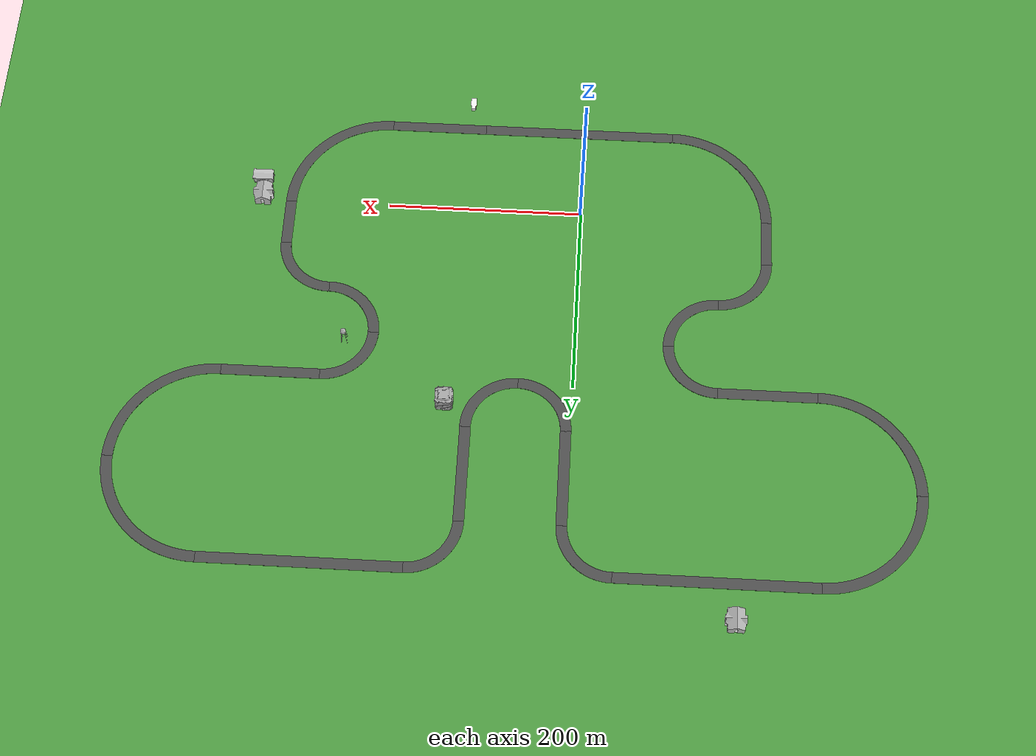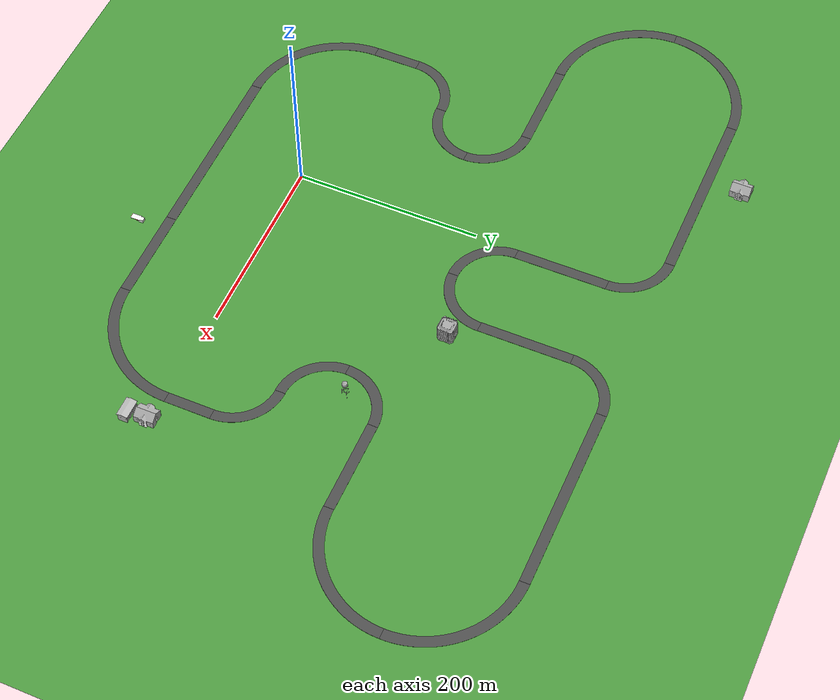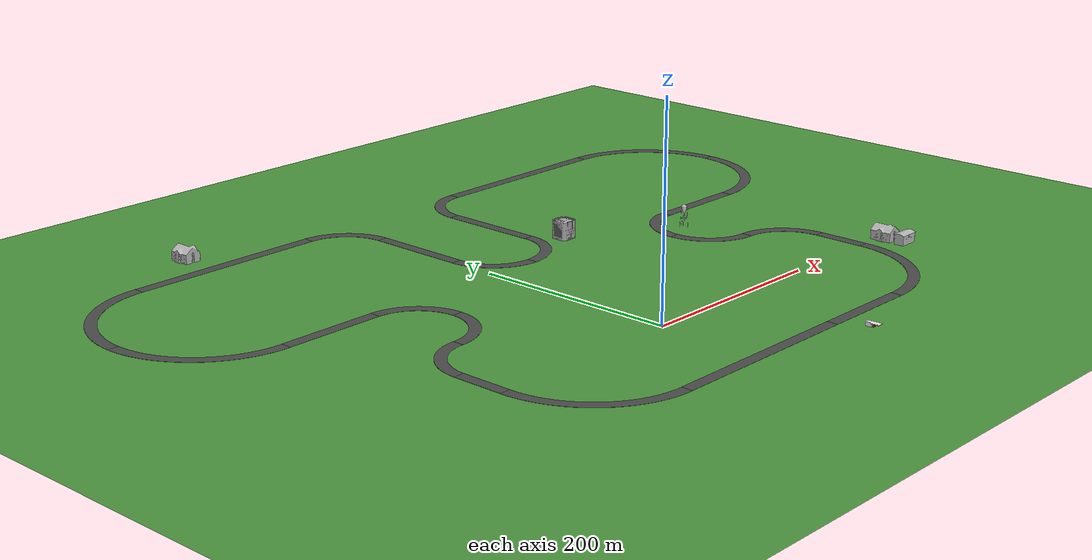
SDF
<sdf version="1.6">
 <world name="default">
  <light name="sun" type="directional">
   <pose>0 0 10 0 -0 0</pose>
   <diffuse>0.8 0.8 0.8 1</diffuse>
   <specular>0.2 0.2 0.2 1</specular>
   <attenuation>
    <range>1000</range>
    <constant>0.9</constant>
    <linear>0.01</linear>
    <quadratic>0.001</quadratic>
   </attenuation>
   <direction>-0.5 0.1 -0.9</direction>
  </light>
  <scene>
   <ambient>0.4 0.4 0.4 1</ambient>
   <background>0 0.9 1 1</background>
   <shadows>1</shadows>
   <grid>0</grid>
  </scene>
  <model name="ground_plane">
   <static>1</static>
   <link name="link">
    <collision name="collision">
     <geometry><plane><normal>0 0 1</normal><size>100 100</size></plane></geometry>
     <surface><friction><ode><mu>100</mu><mu2>50</mu2></ode></friction></surface>
    </collision>
    <visual name="visual">
     <cast_shadows>0</cast_shadows>
     <geometry><plane><normal>0 0 1</normal><size>10000 10000</size></plane></geometry>
     <material>
      <script><uri>file://media/materials/scripts/ds_sim.material</uri><name>DSSim/GrassBackground</name></script>
     </material>
    </visual>
   </link>
  </model>
  <gravity>0 0 -9.8</gravity>
  <magnetic_field>6e-06 2.3e-05 -4.2e-05</magnetic_field>
  <atmosphere type="adiabatic"/>
  <physics name="default_physics" default="0" type="ode">
   <max_step_size>0.001</max_step_size>
   <real_time_factor>1</real_time_factor>
   <real_time_update_rate>1000</real_time_update_rate>
  </physics>
  <scene>
   <ambient>0.4 0.4 0.4 1</ambient>
   <background>0.7 0.7 0.7 1</background>
   <shadows>1</shadows>
   <grid>0</grid>
  </scene>
  <spherical_coordinates>
   <surface_model>EARTH_WGS84</surface_model>
   <latitude_deg>0</latitude_deg>
   <longitude_deg>0</longitude_deg>
   <elevation>0</elevation>
   <heading_deg>0</heading_deg>
  </spherical_coordinates>
  <model name="(DS) Straight Road - 200m_8">
   <static>1</static>
   <link name="link">
    <inertial>
     <mass>1</mass>
     <inertia><ixx>1</ixx><iyy>1</iyy><izz>1</izz><ixy>0</ixy><ixz>0</ixz><iyz>0</iyz></inertia>
    </inertial>
    <collision name="collision">
     <geometry><mesh><uri>model://ds_straight_road_200m/meshes/straight_road_200m.dae</uri></mesh></geometry>
    </collision>
    <visual name="visual">
     <geometry><mesh><uri>model://ds_straight_road_200m/meshes/straight_road_200m.dae</uri></mesh></geometry>
     <material>
      <script><uri>file://media/materials/scripts/ds_sim.material</uri><name>DSSim/Road</name></script>
     </material>
    </visual>
   </link>
   <pose>4.98041 -90.7828 0 0 -0 0</pose>
  </model>
  <model name="(DS) Straight Road - 100m_0">
   <static>1</static>
   <link name="link">
    <inertial>
     <mass>1</mass>
     <inertia><ixx>1</ixx><iyy>1</iyy><izz>1</izz><ixy>0</ixy><ixz>0</ixz><iyz>0</iyz></inertia>
    </inertial>
    <collision name="collision">
     <geometry><mesh><uri>model://ds_straight_road_100m/meshes/straight_road_100m.dae</uri></mesh></geometry>
    </collision>
    <visual name="visual">
     <geometry><mesh><uri>model://ds_straight_road_100m/meshes/straight_road_100m.dae</uri></mesh></geometry>
     <material>
      <script><uri>file://media/materials/scripts/ds_sim.material</uri><name>DSSim/Road</name></script>
     </material>
    </visual>
   </link>
   <pose>154.969 -90.7906 0 0 -0 0</pose>
  </model>
  <model name="(DS) Curved Road - 100m_3">
   <static>1</static>
   <link name="link">
    <inertial>
     <mass>1</mass>
     <inertia><ixx>1</ixx><iyy>1</iyy><izz>1</izz><ixy>0</ixy><ixz>0</ixz><iyz>0</iyz></inertia>
    </inertial>
    <collision name="collision">
     <geometry><mesh><uri>model://ds_curved_road_100m/meshes/curved_road_100m.dae</uri></mesh></geometry>
    </collision>
    <visual name="visual">
     <geometry><mesh><uri>model://ds_curved_road_100m/meshes/curved_road_100m.dae</uri></mesh></geometry>
     <material>
      <script><uri>file://media/materials/scripts/ds_sim.material</uri><name>DSSim/Road</name></script>
     </material>
    </visual>
   </link>
   <pose>257.705 -53.7644 0 0 -0 0</pose>
  </model>
  <model name="(DS) Straight Road - 50m">
   <static>1</static>
   <link name="link">
    <inertial>
     <mass>1</mass>
     <inertia><ixx>1</ixx><iyy>1</iyy><izz>1</izz><ixy>0</ixy><ixz>0</ixz><iyz>0</iyz></inertia>
    </inertial>
    <collision name="collision">
     <geometry><mesh><uri>model://ds_straight_road_50m/meshes/straight_road_50m.dae</uri></mesh></geometry>
    </collision>
    <visual name="visual">
     <geometry><mesh><uri>model://ds_straight_road_50m/meshes/straight_road_50m.dae</uri></mesh></geometry>
     <material>
      <script><uri>file://media/materials/scripts/ds_sim.material</uri><name>DSSim/Road</name></script>
     </material>
    </visual>
   </link>
   <pose>314.936 23.9712 0 0 0 -1.5707</pose>
  </model>
  <model name="(DS) Curved Road - 100m_7">
   <static>1</static>
   <link name="link">
    <inertial>
     <mass>1</mass>
     <inertia><ixx>1</ixx><iyy>1</iyy><izz>1</izz><ixy>0</ixy><ixz>0</ixz><iyz>0</iyz></inertia>
    </inertial>
    <collision name="collision">
     <geometry><mesh><uri>model://ds_curved_road_100m/meshes/curved_road_100m.dae</uri></mesh></geometry>
    </collision>
    <visual name="visual">
     <geometry><mesh><uri>model://ds_curved_road_100m/meshes/curved_road_100m.dae</uri></mesh></geometry>
     <material>
      <script><uri>file://media/materials/scripts/ds_sim.material</uri><name>DSSim/Road</name></script>
     </material>
    </visual>
   </link>
   <pose>-147.731 -53.7561 0 0 0 -1.5707</pose>
  </model>
  <model name="(DS) Straight Road - 50m_2">
   <static>1</static>
   <link name="link">
    <inertial>
     <mass>1</mass>
     <inertia><ixx>1</ixx><iyy>1</iyy><izz>1</izz><ixy>0</ixy><ixz>0</ixz><iyz>0</iyz></inertia>
    </inertial>
    <collision name="collision">
     <geometry><mesh><uri>model://ds_straight_road_50m/meshes/straight_road_50m.dae</uri></mesh></geometry>
    </collision>
    <visual name="visual">
     <geometry><mesh><uri>model://ds_straight_road_50m/meshes/straight_road_50m.dae</uri></mesh></geometry>
     <material>
      <script><uri>file://media/materials/scripts/ds_sim.material</uri><name>DSSim/Road</name></script>
     </material>
    </visual>
   </link>
   <pose>-204.97 23.9511 0 0 -0 1.5707</pose>
  </model>
  <model name="(DS) Curved Road - 50m_1">
   <static>1</static>
   <link name="link">
    <inertial>
     <mass>1</mass>
     <inertia><ixx>1</ixx><iyy>1</iyy><izz>1</izz><ixy>0</ixy><ixz>0</ixz><iyz>0</iyz></inertia>
    </inertial>
    <collision name="collision">
     <geometry><mesh><uri>model://ds_curved_road_50m/meshes/curved_road_50m.dae</uri></mesh></geometry>
    </collision>
    <visual name="visual">
     <geometry><mesh><uri>model://ds_curved_road_50m/meshes/curved_road_50m.dae</uri></mesh></geometry>
     <material>
      <script><uri>file://media/materials/scripts/ds_sim.material</uri><name>DSSim/Road</name></script>
     </material>
    </visual>
   </link>
   <pose>-172.719 76.5402 0 0 -0 3.14159</pose>
  </model>
  <model name="(DS) Curved Road - 50m_2">
   <static>1</static>
   <link name="link">
    <inertial>
     <mass>1</mass>
     <inertia><ixx>1</ixx><iyy>1</iyy><izz>1</izz><ixy>0</ixy><ixz>0</ixz><iyz>0</iyz></inertia>
    </inertial>
    <collision name="collision">
     <geometry><mesh><uri>model://ds_curved_road_50m/meshes/curved_road_50m.dae</uri></mesh></geometry>
    </collision>
    <visual name="visual">
     <geometry><mesh><uri>model://ds_curved_road_50m/meshes/curved_road_50m.dae</uri></mesh></geometry>
     <material>
      <script><uri>file://media/materials/scripts/ds_sim.material</uri><name>DSSim/Road</name></script>
     </material>
    </visual>
   </link>
   <pose>-117.245 120.825 0 0 -0 0</pose>
  </model>
  <model name="(DS) Curved Road - 50m_3">
   <static>1</static>
   <link name="link">
    <inertial>
     <mass>1</mass>
     <inertia><ixx>1</ixx><iyy>1</iyy><izz>1</izz><ixy>0</ixy><ixz>0</ixz><iyz>0</iyz></inertia>
    </inertial>
    <collision name="collision">
     <geometry><mesh><uri>model://ds_curved_road_50m/meshes/curved_road_50m.dae</uri></mesh></geometry>
    </collision>
    <visual name="visual">
     <geometry><mesh><uri>model://ds_curved_road_50m/meshes/curved_road_50m.dae</uri></mesh></geometry>
     <material>
      <script><uri>file://media/materials/scripts/ds_sim.material</uri><name>DSSim/Road</name></script>
     </material>
    </visual>
   </link>
   <pose>-117.244 176.289 0 0 -0 1.5707</pose>
  </model>
  <model name="(DS) Straight Road - 100m_5">
   <static>1</static>
   <link name="link">
    <inertial>
     <mass>1</mass>
     <inertia><ixx>1</ixx><iyy>1</iyy><izz>1</izz><ixy>0</ixy><ixz>0</ixz><iyz>0</iyz></inertia>
    </inertial>
    <collision name="collision">
     <geometry><mesh><uri>model://ds_straight_road_100m/meshes/straight_road_100m.dae</uri></mesh></geometry>
    </collision>
    <visual name="visual">
     <geometry><mesh><uri>model://ds_straight_road_100m/meshes/straight_road_100m.dae</uri></mesh></geometry>
     <material>
      <script><uri>file://media/materials/scripts/ds_sim.material</uri><name>DSSim/Road</name></script>
     </material>
    </visual>
   </link>
   <pose>-194.968 208.536 0 0 -0 0</pose>
  </model>
  <model name="(DS) Curved Road - 50m_7">
   <static>1</static>
   <link name="link">
    <inertial>
     <mass>1</mass>
     <inertia><ixx>1</ixx><iyy>1</iyy><izz>1</izz><ixy>0</ixy><ixz>0</ixz><iyz>0</iyz></inertia>
    </inertial>
    <collision name="collision">
     <geometry><mesh><uri>model://ds_curved_road_50m/meshes/curved_road_50m.dae</uri></mesh></geometry>
    </collision>
    <visual name="visual">
     <geometry><mesh><uri>model://ds_curved_road_50m/meshes/curved_road_50m.dae</uri></mesh></geometry>
     <material>
      <script><uri>file://media/materials/scripts/ds_sim.material</uri><name>DSSim/Road</name></script>
     </material>
    </visual>
   </link>
   <pose>282.694 76.6819 0 0 -0 1.5707</pose>
  </model>
  <model name="(DS) Curved Road - 50m_8">
   <static>1</static>
   <link name="link">
    <inertial>
     <mass>1</mass>
     <inertia><ixx>1</ixx><iyy>1</iyy><izz>1</izz><ixy>0</ixy><ixz>0</ixz><iyz>0</iyz></inertia>
    </inertial>
    <collision name="collision">
     <geometry><mesh><uri>model://ds_curved_road_50m/meshes/curved_road_50m.dae</uri></mesh></geometry>
    </collision>
    <visual name="visual">
     <geometry><mesh><uri>model://ds_curved_road_50m/meshes/curved_road_50m.dae</uri></mesh></geometry>
     <material>
      <script><uri>file://media/materials/scripts/ds_sim.material</uri><name>DSSim/Road</name></script>
     </material>
    </visual>
   </link>
   <pose>227.233 176.317 0 0 -0 3.14159</pose>
  </model>
  <model name="(DS) Curved Road - 50m_9">
   <static>1</static>
   <link name="link">
    <inertial>
     <mass>1</mass>
     <inertia><ixx>1</ixx><iyy>1</iyy><izz>1</izz><ixy>0</ixy><ixz>0</ixz><iyz>0</iyz></inertia>
    </inertial>
    <collision name="collision">
     <geometry><mesh><uri>model://ds_curved_road_50m/meshes/curved_road_50m.dae</uri></mesh></geometry>
    </collision>
    <visual name="visual">
     <geometry><mesh><uri>model://ds_curved_road_50m/meshes/curved_road_50m.dae</uri></mesh></geometry>
     <material>
      <script><uri>file://media/materials/scripts/ds_sim.material</uri><name>DSSim/Road</name></script>
     </material>
    </visual>
   </link>
   <pose>227.236 120.969 0 0 0 -1.5707</pose>
  </model>
  <model name="(DS) Straight Road - 100m_6">
   <static>1</static>
   <link name="link">
    <inertial>
     <mass>1</mass>
     <inertia><ixx>1</ixx><iyy>1</iyy><izz>1</izz><ixy>0</ixy><ixz>0</ixz><iyz>0</iyz></inertia>
    </inertial>
    <collision name="collision">
     <geometry><mesh><uri>model://ds_straight_road_100m/meshes/straight_road_100m.dae</uri></mesh></geometry>
    </collision>
    <visual name="visual">
     <geometry><mesh><uri>model://ds_straight_road_100m/meshes/straight_road_100m.dae</uri></mesh></geometry>
     <material>
      <script><uri>file://media/materials/scripts/ds_sim.material</uri><name>DSSim/Road</name></script>
     </material>
    </visual>
   </link>
   <pose>304.773 208.555 0 0 -0 0</pose>
  </model>
  <model name="(DS) Curved Road - 100m_8">
   <static>1</static>
   <link name="link">
    <inertial>
     <mass>1</mass>
     <inertia><ixx>1</ixx><iyy>1</iyy><izz>1</izz><ixy>0</ixy><ixz>0</ixz><iyz>0</iyz></inertia>
    </inertial>
    <collision name="collision">
     <geometry><mesh><uri>model://ds_curved_road_100m/meshes/curved_road_100m.dae</uri></mesh></geometry>
    </collision>
    <visual name="visual">
     <geometry><mesh><uri>model://ds_curved_road_100m/meshes/curved_road_100m.dae</uri></mesh></geometry>
     <material>
      <script><uri>file://media/materials/scripts/ds_sim.material</uri><name>DSSim/Road</name></script>
     </material>
    </visual>
   </link>
   <pose>407.453 245.59 0 0 -0 0</pose>
  </model>
  <model name="(DS) Curved Road - 100m_9">
   <static>1</static>
   <link name="link">
    <inertial>
     <mass>1</mass>
     <inertia><ixx>1</ixx><iyy>1</iyy><izz>1</izz><ixy>0</ixy><ixz>0</ixz><iyz>0</iyz></inertia>
    </inertial>
    <collision name="collision">
     <geometry><mesh><uri>model://ds_curved_road_100m/meshes/curved_road_100m.dae</uri></mesh></geometry>
    </collision>
    <visual name="visual">
     <geometry><mesh><uri>model://ds_curved_road_100m/meshes/curved_road_100m.dae</uri></mesh></geometry>
     <material>
      <script><uri>file://media/materials/scripts/ds_sim.material</uri><name>DSSim/Road</name></script>
     </material>
    </visual>
   </link>
   <pose>-297.696 245.57 0 0 0 -1.5707</pose>
  </model>
  <model name="(DS) Curved Road - 100m_10">
   <static>1</static>
   <link name="link">
    <inertial>
     <mass>1</mass>
     <inertia><ixx>1</ixx><iyy>1</iyy><izz>1</izz><ixy>0</ixy><ixz>0</ixz><iyz>0</iyz></inertia>
    </inertial>
    <collision name="collision">
     <geometry><mesh><uri>model://ds_curved_road_100m/meshes/curved_road_100m.dae</uri></mesh></geometry>
    </collision>
    <visual name="visual">
     <geometry><mesh><uri>model://ds_curved_road_100m/meshes/curved_road_100m.dae</uri></mesh></geometry>
     <material>
      <script><uri>file://media/materials/scripts/ds_sim.material</uri><name>DSSim/Road</name></script>
     </material>
    </visual>
   </link>
   <pose>-297.693 350.522 0 0 -0 3.14159</pose>
  </model>
  <model name="(DS) Curved Road - 100m_11">
   <static>1</static>
   <link name="link">
    <inertial>
     <mass>1</mass>
     <inertia><ixx>1</ixx><iyy>1</iyy><izz>1</izz><ixy>0</ixy><ixz>0</ixz><iyz>0</iyz></inertia>
    </inertial>
    <collision name="collision">
     <geometry><mesh><uri>model://ds_curved_road_100m/meshes/curved_road_100m.dae</uri></mesh></geometry>
    </collision>
    <visual name="visual">
     <geometry><mesh><uri>model://ds_curved_road_100m/meshes/curved_road_100m.dae</uri></mesh></geometry>
     <material>
      <script><uri>file://media/materials/scripts/ds_sim.material</uri><name>DSSim/Road</name></script>
     </material>
    </visual>
   </link>
   <pose>407.459 351.038 0 0 -0 1.5707</pose>
  </model>
  <model name="(DS) Straight Road - 200m_9">
   <static>1</static>
   <link name="link">
    <inertial>
     <mass>1</mass>
     <inertia><ixx>1</ixx><iyy>1</iyy><izz>1</izz><ixy>0</ixy><ixz>0</ixz><iyz>0</iyz></inertia>
    </inertial>
    <collision name="collision">
     <geometry><mesh><uri>model://ds_straight_road_200m/meshes/straight_road_200m.dae</uri></mesh></geometry>
    </collision>
    <visual name="visual">
     <geometry><mesh><uri>model://ds_straight_road_200m/meshes/straight_road_200m.dae</uri></mesh></geometry>
     <material>
      <script><uri>file://media/materials/scripts/ds_sim.material</uri><name>DSSim/Road</name></script>
     </material>
    </visual>
   </link>
   <pose>-144.993 407.764 0 0 -0 0</pose>
  </model>
  <model name="(DS) Straight Road - 200m_11">
   <static>1</static>
   <link name="link">
    <inertial>
     <mass>1</mass>
     <inertia><ixx>1</ixx><iyy>1</iyy><izz>1</izz><ixy>0</ixy><ixz>0</ixz><iyz>0</iyz></inertia>
    </inertial>
    <collision name="collision">
     <geometry><mesh><uri>model://ds_straight_road_200m/meshes/straight_road_200m.dae</uri></mesh></geometry>
    </collision>
    <visual name="visual">
     <geometry><mesh><uri>model://ds_straight_road_200m/meshes/straight_road_200m.dae</uri></mesh></geometry>
     <material>
      <script><uri>file://media/materials/scripts/ds_sim.material</uri><name>DSSim/Road</name></script>
     </material>
    </visual>
   </link>
   <pose>254.821 408.288 0 0 -0 0</pose>
  </model>
  <model name="(DS) Curved Road - 50m_10">
   <static>1</static>
   <link name="link">
    <inertial>
     <mass>1</mass>
     <inertia><ixx>1</ixx><iyy>1</iyy><izz>1</izz><ixy>0</ixy><ixz>0</ixz><iyz>0</iyz></inertia>
    </inertial>
    <collision name="collision">
     <geometry><mesh><uri>model://ds_curved_road_50m/meshes/curved_road_50m.dae</uri></mesh></geometry>
    </collision>
    <visual name="visual">
     <geometry><mesh><uri>model://ds_curved_road_50m/meshes/curved_road_50m.dae</uri></mesh></geometry>
     <material>
      <script><uri>file://media/materials/scripts/ds_sim.material</uri><name>DSSim/Road</name></script>
     </material>
    </visual>
   </link>
   <pose>82.8035 220.58 0 0 -0 0</pose>
  </model>
  <model name="(DS) Curved Road - 50m_11">
   <static>1</static>
   <link name="link">
    <inertial>
     <mass>1</mass>
     <inertia><ixx>1</ixx><iyy>1</iyy><izz>1</izz><ixy>0</ixy><ixz>0</ixz><iyz>0</iyz></inertia>
    </inertial>
    <collision name="collision">
     <geometry><mesh><uri>model://ds_curved_road_50m/meshes/curved_road_50m.dae</uri></mesh></geometry>
    </collision>
    <visual name="visual">
     <geometry><mesh><uri>model://ds_curved_road_50m/meshes/curved_road_50m.dae</uri></mesh></geometry>
     <material>
      <script><uri>file://media/materials/scripts/ds_sim.material</uri><name>DSSim/Road</name></script>
     </material>
    </visual>
   </link>
   <pose>127.086 376.051 0 0 -0 3.14159</pose>
  </model>
  <model name="(DS) Curved Road - 50m_12">
   <static>1</static>
   <link name="link">
    <inertial>
     <mass>1</mass>
     <inertia><ixx>1</ixx><iyy>1</iyy><izz>1</izz><ixy>0</ixy><ixz>0</ixz><iyz>0</iyz></inertia>
    </inertial>
    <collision name="collision">
     <geometry><mesh><uri>model://ds_curved_road_50m/meshes/curved_road_50m.dae</uri></mesh></geometry>
    </collision>
    <visual name="visual">
     <geometry><mesh><uri>model://ds_curved_road_50m/meshes/curved_road_50m.dae</uri></mesh></geometry>
     <material>
      <script><uri>file://media/materials/scripts/ds_sim.material</uri><name>DSSim/Road</name></script>
     </material>
    </visual>
   </link>
   <pose>27.3315 220.574 0 0 0 -1.5707</pose>
  </model>
  <model name="(DS) Curved Road - 50m_13">
   <static>1</static>
   <link name="link">
    <inertial>
     <mass>1</mass>
     <inertia><ixx>1</ixx><iyy>1</iyy><izz>1</izz><ixy>0</ixy><ixz>0</ixz><iyz>0</iyz></inertia>
    </inertial>
    <collision name="collision">
     <geometry><mesh><uri>model://ds_curved_road_50m/meshes/curved_road_50m.dae</uri></mesh></geometry>
    </collision>
    <visual name="visual">
     <geometry><mesh><uri>model://ds_curved_road_50m/meshes/curved_road_50m.dae</uri></mesh></geometry>
     <material>
      <script><uri>file://media/materials/scripts/ds_sim.material</uri><name>DSSim/Road</name></script>
     </material>
    </visual>
   </link>
   <pose>-17.2474 375.532 0 0 -0 1.5707</pose>
  </model>
  <model name="(DS) Straight Road - 100m_7">
   <static>1</static>
   <link name="link">
    <inertial>
     <mass>1</mass>
     <inertia><ixx>1</ixx><iyy>1</iyy><izz>1</izz><ixy>0</ixy><ixz>0</ixz><iyz>0</iyz></inertia>
    </inertial>
    <collision name="collision">
     <geometry><mesh><uri>model://ds_straight_road_100m/meshes/straight_road_100m.dae</uri></mesh></geometry>
    </collision>
    <visual name="visual">
     <geometry><mesh><uri>model://ds_straight_road_100m/meshes/straight_road_100m.dae</uri></mesh></geometry>
     <material>
      <script><uri>file://media/materials/scripts/ds_sim.material</uri><name>DSSim/Road</name></script>
     </material>
    </visual>
   </link>
   <pose>15.0897 297.99 0 0 0 -1.5707</pose>
  </model>
  <model name="(DS) Straight Road - 100m_8">
   <static>1</static>
   <link name="link">
    <inertial>
     <mass>1</mass>
     <inertia><ixx>1</ixx><iyy>1</iyy><izz>1</izz><ixy>0</ixy><ixz>0</ixz><iyz>0</iyz></inertia>
    </inertial>
    <collision name="collision">
     <geometry><mesh><uri>model://ds_straight_road_100m/meshes/straight_road_100m.dae</uri></mesh></geometry>
    </collision>
    <visual name="visual">
     <geometry><mesh><uri>model://ds_straight_road_100m/meshes/straight_road_100m.dae</uri></mesh></geometry>
     <material>
      <script><uri>file://media/materials/scripts/ds_sim.material</uri><name>DSSim/Road</name></script>
     </material>
    </visual>
   </link>
   <pose>94.847 298.317 0 0 -0 1.5707</pose>
  </model>
  <audio><device>default</device></audio>
  <model name="Gas Station">
   <static>1</static>
   <link name="Gas Station::link">
    <collision name="collision">
     <geometry><mesh><uri>model://gas_station/meshes/gas_station.dae</uri></mesh></geometry>
    </collision>
    <visual name="visual">
     <geometry><mesh><uri>model://gas_station/meshes/gas_station.dae</uri></mesh></geometry>
     <material>
      <script>
       <uri>model://gas_station/materials/scripts</uri>
       <uri>model://gas_station/materials/textures</uri>
       <name>GasStation/Diffuse</name>
      </script>
      <shader type="normal_map_tangent_space"><normal_map>GasStation_Normal.png</normal_map></shader>
     </material>
    </visual>
    <enable_wind>1</enable_wind>
   </link>
   <pose>120.241 -131.263 0 0 0 -1.56682</pose>
   <enable_wind>1</enable_wind>
  </model>
  <model name="apartment">
   <static>1</static>
   <link name="link">
    <collision name="collision">
     <geometry><mesh><uri>model://apartment/meshes/apartment.dae</uri></mesh></geometry>
    </collision>
    <visual name="visual">
     <geometry><mesh><uri>model://apartment/meshes/apartment.dae</uri></mesh></geometry>
    </visual>
   </link>
   <pose>-163.06 435.322 0 0 -0 0</pose>
  </model>
  <model name="Office Building">
   <static>1</static>
   <link name="link">
    <collision name="collision">
     <geometry><mesh><uri>model://office_building/meshes/office_building.dae</uri></mesh></geometry>
    </collision>
    <visual name="visual">
     <geometry><mesh><uri>model://office_building/meshes/office_building.dae</uri></mesh></geometry>
    </visual>
   </link>
   <pose>127.346 223.006 0 0 0 -3.14</pose>
  </model>
  <model name="water_tower">
   <static>1</static>
   <link name="link">
    <collision name="collision">
     <geometry><mesh><uri>model://water_tower/meshes/water_tower.dae</uri></mesh></geometry>
    </collision>
    <visual name="visual">
     <geometry><mesh><uri>model://water_tower/meshes/water_tower.dae</uri></mesh></geometry>
    </visual>
   </link>
   <pose>233.132 159.385 0 0 -0 0</pose>
  </model>
  <model name="fire_station">
   <static>1</static>
   <link name="link">
    <collision name="main">
     <pose>0 -0.135 5 0 -0 0</pose>
     <geometry><box><size>19.98 9.68 10</size></box></geometry>
    </collision>
    <collision name="front_top">
     <pose>0 4.957 7 0 -0 0</pose>
     <geometry><box><size>20 0.515 6</size></box></geometry>
    </collision>
    <collision name="column_0">
     <pose>9.333 4.957 2 0 -0 0</pose>
     <geometry><box><size>1.315 0.515 4</size></box></geometry>
    </collision>
    <collision name="column_1">
     <pose>3.33 4.957 2 0 -0 0</pose>
     <geometry><box><size>2.63 0.515 4</size></box></geometry>
    </collision>
    <collision name="column_2">
     <pose>-3.33 4.957 2 0 -0 0</pose>
     <geometry><box><size>2.63 0.515 4</size></box></geometry>
    </collision>
    <collision name="column_3">
     <pose>-9.333 4.957 2 0 -0 0</pose>
     <geometry><box><size>1.315 0.515 4</size></box></geometry>
    </collision>
    <collision name="roof_back">
     <pose>0 -2.742 10.467 0.25 -0 0</pose>
     <geometry><box><size>21.47 6.12 0.28</size></box></geometry>
    </collision>
    <collision name="roof_front">
     <pose>0 3.12 10.467 -0.25 0 0</pose>
     <geometry><box><size>21.47 6.12 0.28</size></box></geometry>
    </collision>
    <collision name="roof_base">
     <pose>0 0.188 9.705 0 -0 0</pose>
     <geometry><box><size>21.47 11.86 0.28</size></box></geometry>
    </collision>
    <collision name="roof_filling_0">
     <pose>0 0.188 9.985 0 -0 0</pose>
     <geometry><box><size>21.47 9.53 0.28</size></box></geometry>
    </collision>
    <collision name="roof_filling_1">
     <pose>0 0.188 10.14 0 -0 0</pose>
     <geometry><box><size>21.47 8.41 0.28</size></box></geometry>
    </collision>
    <collision name="roof_filling_2">
     <pose>0 0.188 10.42 0 -0 0</pose>
     <geometry><box><size>21.47 6.25 0.28</size></box></geometry>
    </collision>
    <collision name="roof_filling_3">
     <pose>0 0.188 10.7 0 -0 0</pose>
     <geometry><box><size>21.47 4.05 0.28</size></box></geometry>
    </collision>
    <collision name="roof_filling_4">
     <pose>0 0.188 10.98 0 -0 0</pose>
     <geometry><box><size>21.47 1.83 0.28</size></box></geometry>
    </collision>
    <visual name="visual">
     <geometry><mesh><uri>model://fire_station/meshes/fire_station.dae</uri></mesh></geometry>
    </visual>
   </link>
   <pose>336.405 -26.9232 0 0 -0 0</pose>
  </model>
  <model name="apartment_0">
   <static>1</static>
   <link name="link">
    <collision name="collision">
     <geometry><mesh><uri>model://apartment/meshes/apartment.dae</uri></mesh></geometry>
    </collision>
    <visual name="visual">
     <geometry><mesh><uri>model://apartment/meshes/apartment.dae</uri></mesh></geometry>
    </visual>
   </link>
   <pose>334.095 -6.27685 0 0 -0 0</pose>
  </model>
 </world>
</sdf>
